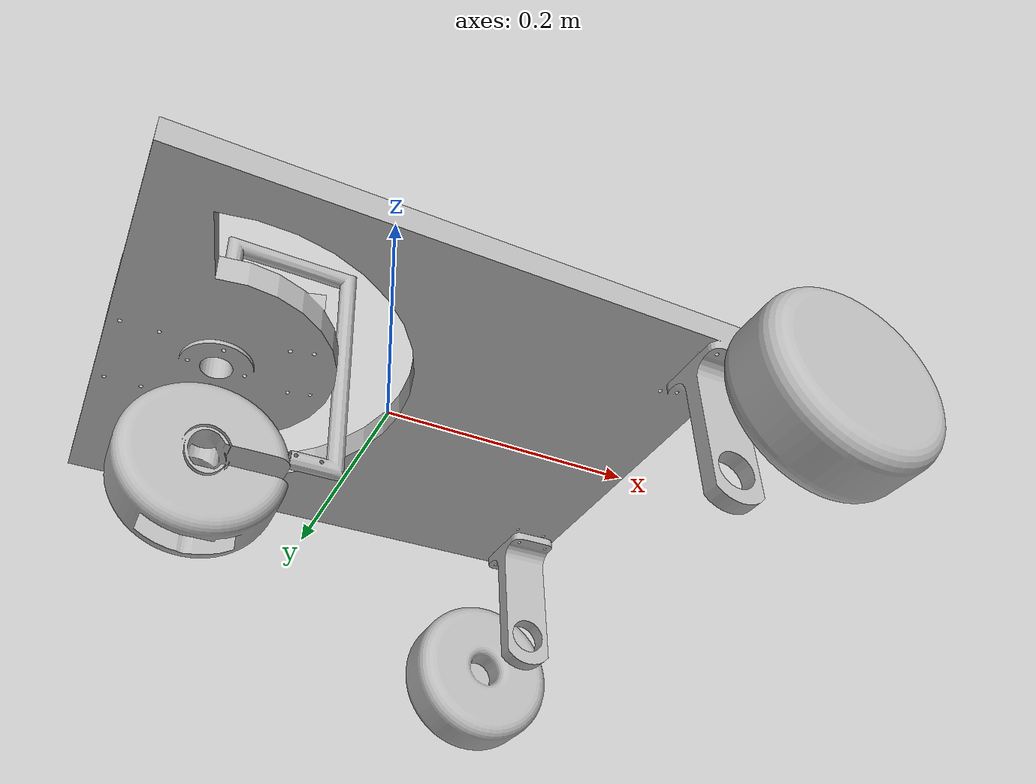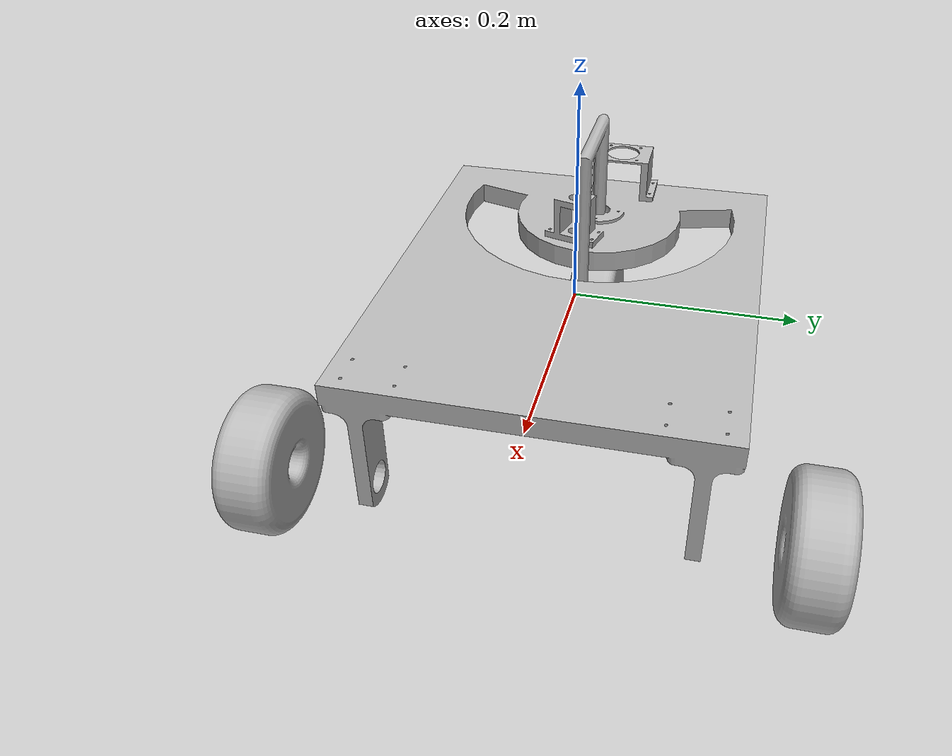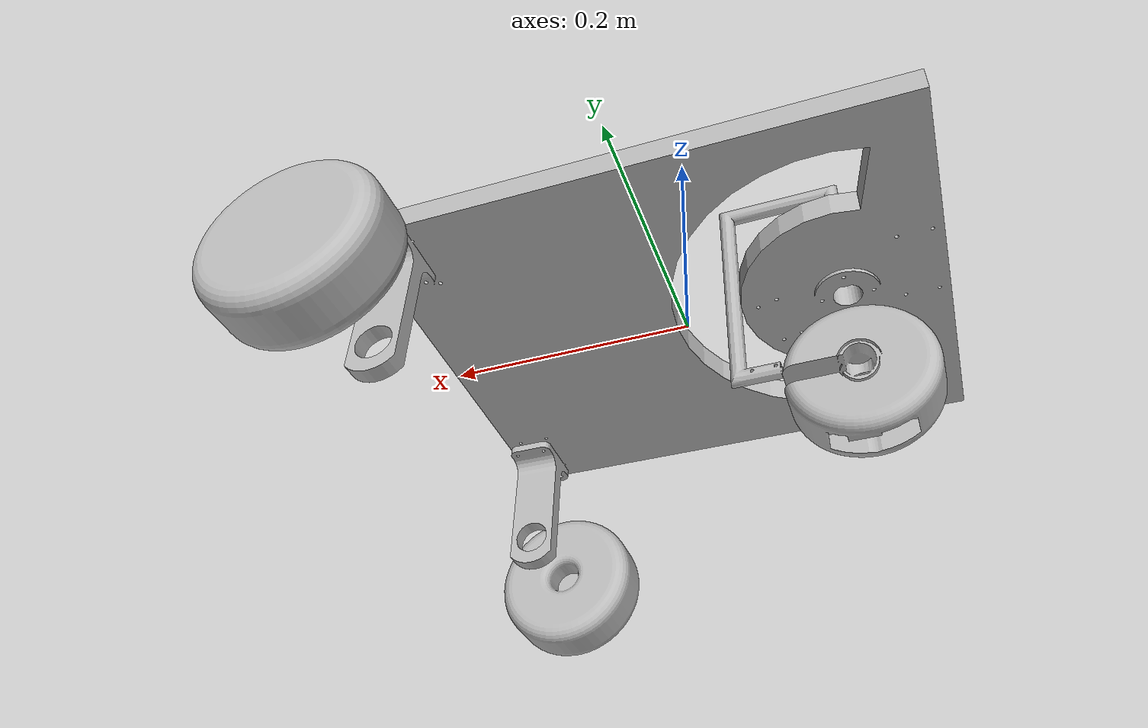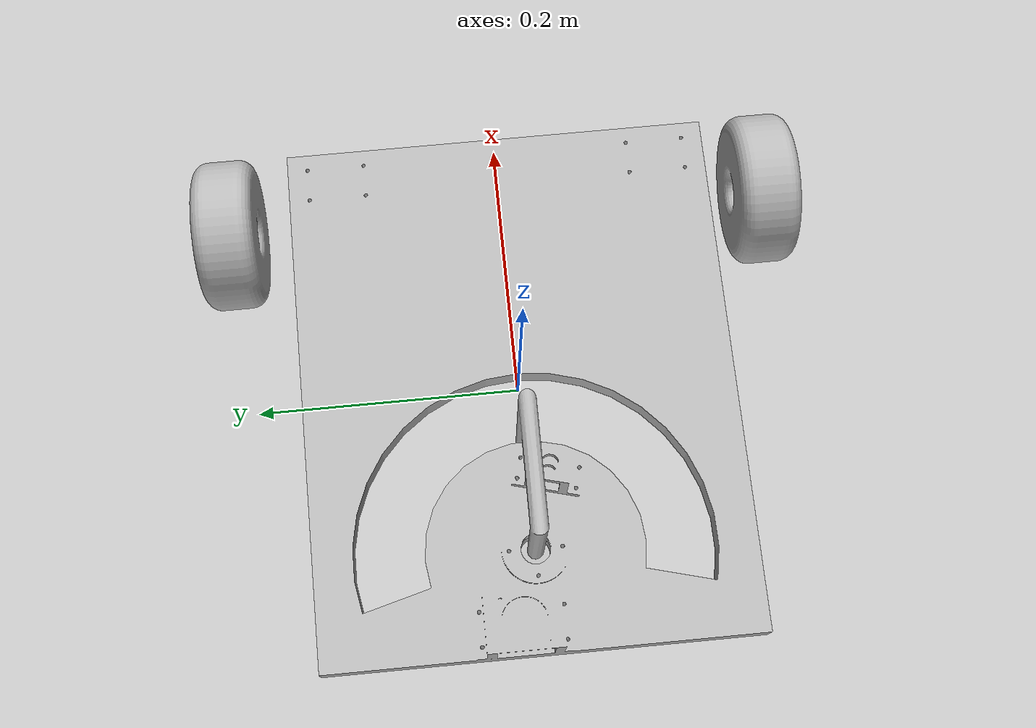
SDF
<?xml version='1.0'?>
<sdf version='1.6'>
  <model name='HEW_test'>
    <link name='base_link'>
      <pose frame=''>0 0 0 0 -0 0</pose>
      <inertial>
        <pose frame=''>0.017915 0.00819 -5.2e-05 0 -0 0</pose>
        <mass>2.40036</mass>
        <inertia>
          <ixx>0.0213869</ixx>
          <ixy>1.89992e-09</ixy>
          <ixz>1.44203e-06</ixz>
          <iyy>0.0542879</iyy>
          <iyz>1.97467e-08</iyz>
          <izz>0.0333137</izz>
        </inertia>
      </inertial>
      <collision name='base_link_collision'>
        <pose frame=''>0 0 0 0 -0 0</pose>
        <geometry>
          <mesh>
            <scale>1 1 1</scale>
            <uri>model://HEW/ardupilot_gazebo/models/meshes/base_link_col.STL</uri>
          </mesh>
        </geometry>
      </collision>
      <visual name='base_link_visual'>
        <pose frame=''>0 0 0 0 -0 0</pose>
        <geometry>
          <mesh>
            <scale>1 1 1</scale>
            <uri>model://HEW/ardupilot_gazebo/models/meshes/base_link.STL</uri>
          </mesh>
        </geometry>
      </visual>
    </link>
    <link name='Arm_Link'>
      <pose frame=''>-0.127 0 -0.001568 0 -0 0</pose>
      <inertial>
        <pose frame=''>0.055393 -0.000468 0.050229 0 -0 0</pose>
        <mass>0.021131</mass>
        <inertia>
          <ixx>7.7995e-05</ixx>
          <ixy>2.6771e-07</ixy>
          <ixz>1.8645e-05</ixz>
          <iyy>0.00010972</iyy>
          <iyz>-1.5689e-07</iyz>
          <izz>3.2398e-05</izz>
        </inertia>
      </inertial>
      <collision name='Arm_Link_collision'>
        <pose frame=''>0 0 0 0 -0 0</pose>
        <geometry>
          <mesh>
            <scale>1 1 1</scale>
            <uri>model://HEW/ardupilot_gazebo/models/meshes/Arm_Link_col.STL</uri>
          </mesh>
        </geometry>
      </collision>
      <visual name='Arm_Link_visual'>
        <pose frame=''>0 0 0 0 -0 0</pose>
        <geometry>
          <mesh>
            <scale>1 1 1</scale>
            <uri>model://HEW/ardupilot_gazebo/models/meshes/Arm_Link.STL</uri>
          </mesh>
        </geometry>
      </visual>
    </link>
    <joint name='Arm_Link_cont' type='revolute'>
      <child>Arm_Link</child>
      <parent>base_link</parent>
      <axis>
        <xyz>0 0 -1</xyz>
        <limit>
          <lower>-1.745</lower>
          <upper>1.745</upper>
          <effort>0</effort>
          <velocity>20</velocity>
        </limit>
        <dynamics>
          <spring_reference>0</spring_reference>
          <spring_stiffness>0</spring_stiffness>
        </dynamics>
        <use_parent_model_frame>1</use_parent_model_frame>
      </axis>
    </joint>
    <link name='Front_Wheel'>
      <pose frame=''>-0.127 0 -0.086868 0 0 -0.008442</pose>
      <inertial>
        <pose frame=''>-0.003311 1e-06 0.003337 0 -0 0</pose>
        <mass>0.33388</mass>
        <inertia>
          <ixx>0.00011765</ixx>
          <ixy>4.0231e-12</ixy>
          <ixz>3.047e-06</ixz>
          <iyy>0.00033015</iyy>
          <iyz>3.8519e-10</iyz>
          <izz>0.00033254</izz>
        </inertia>
      </inertial>
      <collision name='Front_Wheel_collision'>
        <pose frame=''>0 0 0 0 -0 0</pose>
        <geometry>
          <mesh>
            <scale>1 1 1</scale>
            <uri>model://HEW/ardupilot_gazebo/models/meshes/Front_Wheel_col.STL</uri>
          </mesh>
        </geometry>
      </collision>
      <visual name='Front_Wheel_visual'>
        <pose frame=''>0 0 0 0 -0 0</pose>
        <geometry>
          <mesh>
            <scale>1 1 1</scale>
            <uri>model://HEW/ardupilot_gazebo/models/meshes/Front_Wheel.STL</uri>
          </mesh>
        </geometry>
      </visual>
    </link>
    <joint name='Front_Wheel_Cont' type='revolute'>
      <child>Front_Wheel</child>
      <parent>base_link</parent>
      <axis>
        <xyz>-0.999964 0.008442 0</xyz>
        <limit>
          <lower>-1e+16</lower>
          <upper>1e+16</upper>
        </limit>
        <dynamics>
          <spring_reference>0</spring_reference>
          <spring_stiffness>0</spring_stiffness>
        </dynamics>
        <use_parent_model_frame>1</use_parent_model_frame>
      </axis>
    </joint>
    <link name='Rear_Wheels_Link'>
      <pose frame=''>0.18415 0 -0.08635 0 -0 0</pose>
      <inertial>
        <pose frame=''>0 -0 0 0 -0 0</pose>
        <mass>1.1992</mass>
        <inertia>
          <ixx>0.001439</ixx>
          <ixy>-1.7333e-20</ixy>
          <ixz>-5.5793e-20</ixz>
          <iyy>0.0023958</iyy>
          <iyz>1.8973e-20</iyz>
          <izz>0.001439</izz>
        </inertia>
      </inertial>
      <collision name='Rear_Wheels_Link_collision'>
        <pose frame=''>0 0 0 0 -0 0</pose>
        <geometry>
          <mesh>
            <scale>1 1 1</scale>
            <uri>model://HEW/ardupilot_gazebo/models/meshes/Rear_Wheels_Link_col.STL</uri>
          </mesh>
        </geometry>
      </collision>
      <visual name='Rear_Wheels_Link_visual'>
        <pose frame=''>0 0 0 0 -0 0</pose>
        <geometry>
          <mesh>
            <scale>1 1 1</scale>
            <uri>model://HEW/ardupilot_gazebo/models/meshes/Rear_Wheels_Link.STL</uri>
          </mesh>
        </geometry>
      </visual>
    </link>
    <joint name='Rear_Wheels_cont' type='revolute'>
      <child>Rear_Wheels_Link</child>
      <parent>base_link</parent>
      <axis>
        <xyz>0 1 0</xyz>
        <limit>
          <lower>-1e+16</lower>
          <upper>1e+16</upper>
        </limit>
        <dynamics>
          <spring_reference>0</spring_reference>
          <spring_stiffness>0</spring_stiffness>
        </dynamics>
        <use_parent_model_frame>1</use_parent_model_frame>
      </axis>
    </joint>
  </model>
</sdf>
